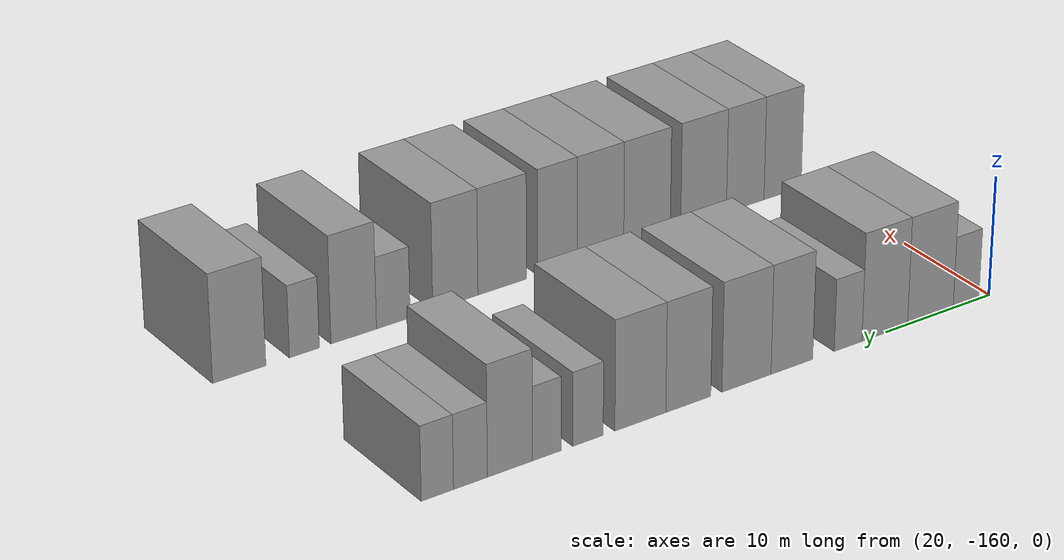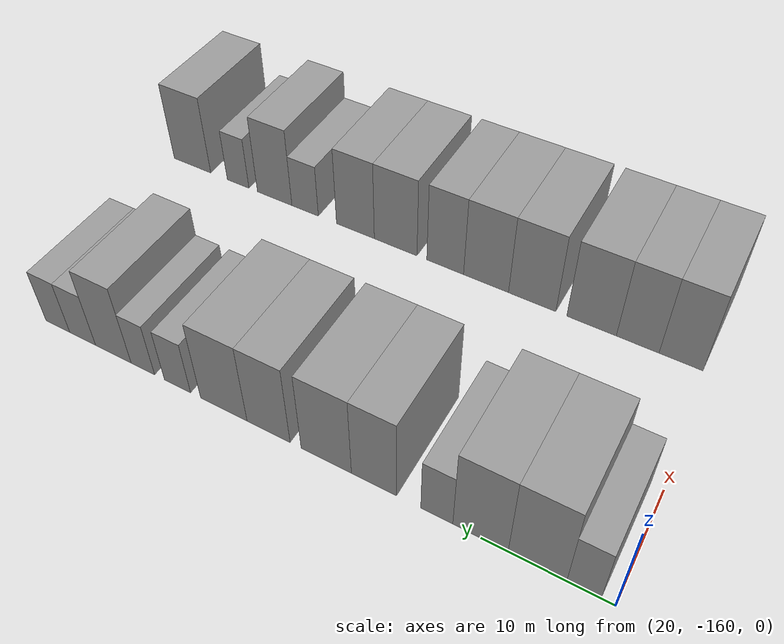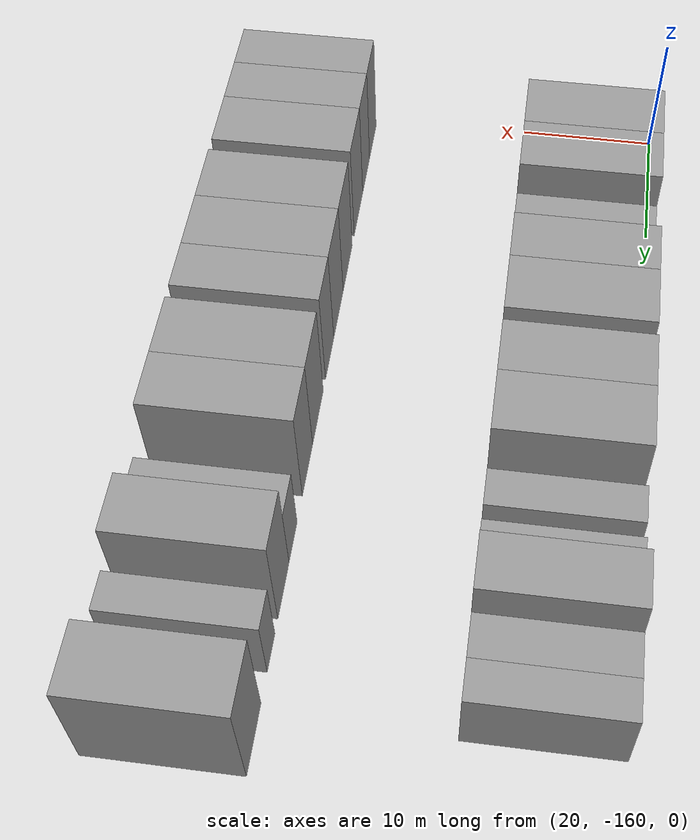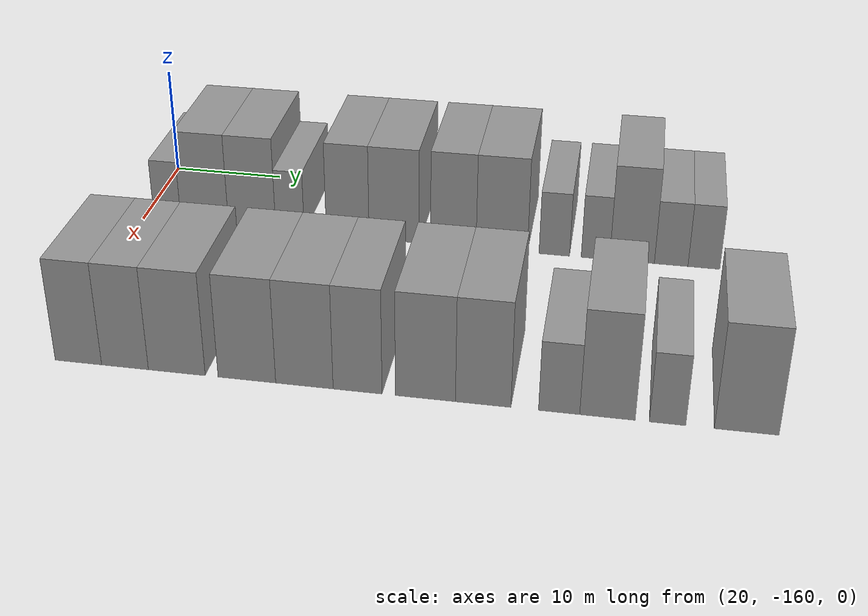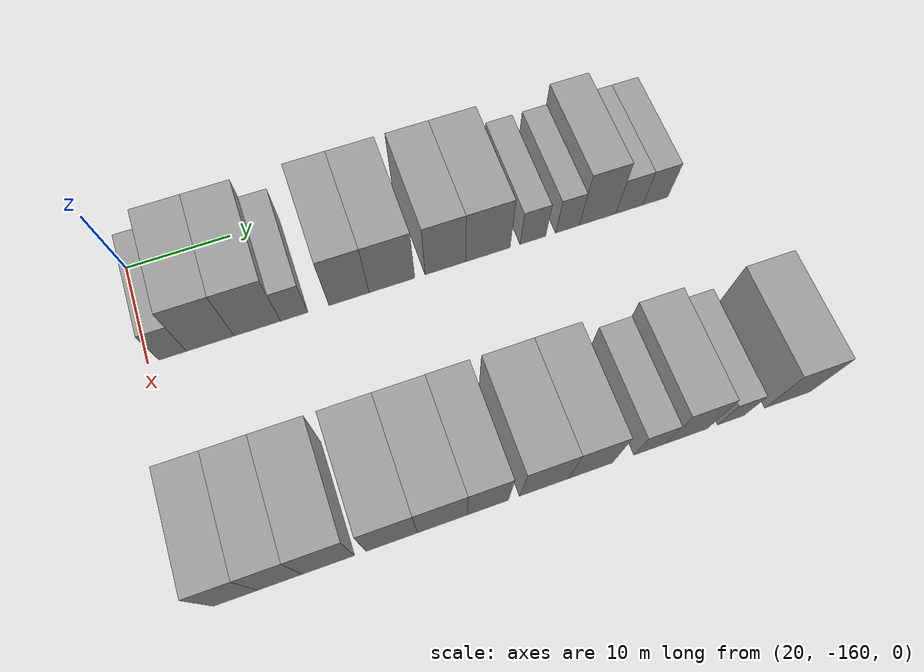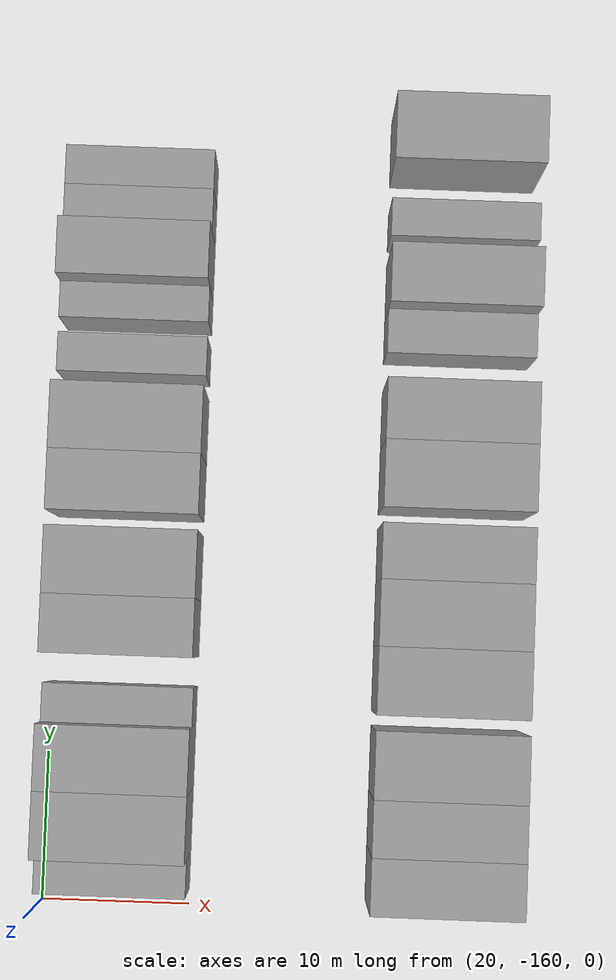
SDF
<sdf version="1.6">
 <world name="default">
  <model name="building_14">
   <static>1</static>
   <pose>25.0000 -157.7201 0 0.000000 0.000000 0.000000</pose>
   <link name="link">
    <pose>0 0 3.00 0 0 0</pose>
    <collision name="collision"><geometry><box><size>10.0000 2.4967 6.0000</size></box></geometry></collision>
    <visual name="visual">
     <cast_shadows>0</cast_shadows>
     <geometry><box><size>10.0000 2.4967 6.0000</size></box></geometry>
     <material>
      <script>
       <uri>model://grey_wall/materials/scripts</uri>
       <uri>model://grey_wall/materials/textures</uri>
       <name>vrc/grey_wall</name>
      </script>
     </material>
    </visual>
   </link>
  </model>
  <model name="building_15">
   <static>1</static>
   <pose>25.0000 -154.2740 0 0.000000 0.000000 0.000000</pose>
   <link name="link">
    <pose>0 0 4.50 0 0 0</pose>
    <collision name="collision"><geometry><box><size>10.0000 4.3956 9.0000</size></box></geometry></collision>
    <visual name="visual">
     <cast_shadows>0</cast_shadows>
     <geometry><box><size>10.0000 4.3956 9.0000</size></box></geometry>
     <material>
      <script>
       <uri>model://grey_wall/materials/scripts</uri>
       <uri>model://grey_wall/materials/textures</uri>
       <name>vrc/grey_wall</name>
      </script>
     </material>
    </visual>
   </link>
  </model>
  <model name="building_16">
   <static>1</static>
   <pose>25.0000 -149.9144 0 0.000000 0.000000 0.000000</pose>
   <link name="link">
    <pose>0 0 4.50 0 0 0</pose>
    <collision name="collision"><geometry><box><size>10.0000 4.3236 9.0000</size></box></geometry></collision>
    <visual name="visual">
     <cast_shadows>0</cast_shadows>
     <geometry><box><size>10.0000 4.3236 9.0000</size></box></geometry>
     <material>
      <script>
       <uri>model://grey_wall/materials/scripts</uri>
       <uri>model://grey_wall/materials/textures</uri>
       <name>vrc/grey_wall</name>
      </script>
     </material>
    </visual>
   </link>
  </model>
  <model name="building_17">
   <static>1</static>
   <pose>25.0000 -146.4588 0 0.000000 0.000000 0.000000</pose>
   <link name="link">
    <pose>0 0 3.00 0 0 0</pose>
    <collision name="collision"><geometry><box><size>10.0000 2.5877 6.0000</size></box></geometry></collision>
    <visual name="visual">
     <cast_shadows>0</cast_shadows>
     <geometry><box><size>10.0000 2.5877 6.0000</size></box></geometry>
     <material>
      <script>
       <uri>model://grey_wall/materials/scripts</uri>
       <uri>model://grey_wall/materials/textures</uri>
       <name>vrc/grey_wall</name>
      </script>
     </material>
    </visual>
   </link>
  </model>
  <model name="building_18">
   <static>1</static>
   <pose>25.0000 -141.2487 0 0.000000 0.000000 0.000000</pose>
   <link name="link">
    <pose>0 0 4.50 0 0 0</pose>
    <collision name="collision"><geometry><box><size>10.0000 3.8325 9.0000</size></box></geometry></collision>
    <visual name="visual">
     <cast_shadows>0</cast_shadows>
     <geometry><box><size>10.0000 3.8325 9.0000</size></box></geometry>
     <material>
      <script>
       <uri>model://grey_wall/materials/scripts</uri>
       <uri>model://grey_wall/materials/textures</uri>
       <name>vrc/grey_wall</name>
      </script>
     </material>
    </visual>
   </link>
  </model>
  <model name="building_19">
   <static>1</static>
   <pose>25.0000 -137.1106 0 0.000000 0.000000 0.000000</pose>
   <link name="link">
    <pose>0 0 4.50 0 0 0</pose>
    <collision name="collision"><geometry><box><size>10.0000 4.4438 9.0000</size></box></geometry></collision>
    <visual name="visual">
     <cast_shadows>0</cast_shadows>
     <geometry><box><size>10.0000 4.4438 9.0000</size></box></geometry>
     <material>
      <script>
       <uri>model://grey_wall/materials/scripts</uri>
       <uri>model://grey_wall/materials/textures</uri>
       <name>vrc/grey_wall</name>
      </script>
     </material>
    </visual>
   </link>
  </model>
  <model name="building_20">
   <static>1</static>
   <pose>25.0000 -131.8946 0 0.000000 0.000000 0.000000</pose>
   <link name="link">
    <pose>0 0 4.50 0 0 0</pose>
    <collision name="collision"><geometry><box><size>10.0000 3.9882 9.0000</size></box></geometry></collision>
    <visual name="visual">
     <cast_shadows>0</cast_shadows>
     <geometry><box><size>10.0000 3.9882 9.0000</size></box></geometry>
     <material>
      <script>
       <uri>model://grey_wall/materials/scripts</uri>
       <uri>model://grey_wall/materials/textures</uri>
       <name>vrc/grey_wall</name>
      </script>
     </material>
    </visual>
   </link>
  </model>
  <model name="building_21">
   <static>1</static>
   <pose>25.0000 -127.6713 0 0.000000 0.000000 0.000000</pose>
   <link name="link">
    <pose>0 0 4.50 0 0 0</pose>
    <collision name="collision"><geometry><box><size>10.0000 4.4585 9.0000</size></box></geometry></collision>
    <visual name="visual">
     <cast_shadows>0</cast_shadows>
     <geometry><box><size>10.0000 4.4585 9.0000</size></box></geometry>
     <material>
      <script>
       <uri>model://grey_wall/materials/scripts</uri>
       <uri>model://grey_wall/materials/textures</uri>
       <name>vrc/grey_wall</name>
      </script>
     </material>
    </visual>
   </link>
  </model>
  <model name="building_22">
   <static>1</static>
   <pose>25.0000 -123.1345 0 0.000000 0.000000 0.000000</pose>
   <link name="link">
    <pose>0 0 3.00 0 0 0</pose>
    <collision name="collision"><geometry><box><size>10.0000 2.6150 6.0000</size></box></geometry></collision>
    <visual name="visual">
     <cast_shadows>0</cast_shadows>
     <geometry><box><size>10.0000 2.6150 6.0000</size></box></geometry>
     <material>
      <script>
       <uri>model://grey_wall/materials/scripts</uri>
       <uri>model://grey_wall/materials/textures</uri>
       <name>vrc/grey_wall</name>
      </script>
     </material>
    </visual>
   </link>
  </model>
  <model name="building_23">
   <static>1</static>
   <pose>25.0000 -119.6156 0 0.000000 0.000000 0.000000</pose>
   <link name="link">
    <pose>0 0 3.00 0 0 0</pose>
    <collision name="collision"><geometry><box><size>10.0000 2.4228 6.0000</size></box></geometry></collision>
    <visual name="visual">
     <cast_shadows>0</cast_shadows>
     <geometry><box><size>10.0000 2.4228 6.0000</size></box></geometry>
     <material>
      <script>
       <uri>model://grey_wall/materials/scripts</uri>
       <uri>model://grey_wall/materials/textures</uri>
       <name>vrc/grey_wall</name>
      </script>
     </material>
    </visual>
   </link>
  </model>
  <model name="building_24">
   <static>1</static>
   <pose>25.0000 -116.5192 0 0.000000 0.000000 0.000000</pose>
   <link name="link">
    <pose>0 0 4.50 0 0 0</pose>
    <collision name="collision"><geometry><box><size>10.0000 3.7701 9.0000</size></box></geometry></collision>
    <visual name="visual">
     <cast_shadows>0</cast_shadows>
     <geometry><box><size>10.0000 3.7701 9.0000</size></box></geometry>
     <material>
      <script>
       <uri>model://grey_wall/materials/scripts</uri>
       <uri>model://grey_wall/materials/textures</uri>
       <name>vrc/grey_wall</name>
      </script>
     </material>
    </visual>
   </link>
  </model>
  <model name="building_25">
   <static>1</static>
   <pose>25.0000 -113.2266 0 0.000000 0.000000 0.000000</pose>
   <link name="link">
    <pose>0 0 3.00 0 0 0</pose>
    <collision name="collision"><geometry><box><size>10.0000 2.8150 6.0000</size></box></geometry></collision>
    <visual name="visual">
     <cast_shadows>0</cast_shadows>
     <geometry><box><size>10.0000 2.8150 6.0000</size></box></geometry>
     <material>
      <script>
       <uri>model://grey_wall/materials/scripts</uri>
       <uri>model://grey_wall/materials/textures</uri>
       <name>vrc/grey_wall</name>
      </script>
     </material>
    </visual>
   </link>
  </model>
  <model name="building_26">
   <static>1</static>
   <pose>25.0000 -110.4952 0 0.000000 0.000000 0.000000</pose>
   <link name="link">
    <pose>0 0 3.00 0 0 0</pose>
    <collision name="collision"><geometry><box><size>10.0000 2.6478 6.0000</size></box></geometry></collision>
    <visual name="visual">
     <cast_shadows>0</cast_shadows>
     <geometry><box><size>10.0000 2.6478 6.0000</size></box></geometry>
     <material>
      <script>
       <uri>model://grey_wall/materials/scripts</uri>
       <uri>model://grey_wall/materials/textures</uri>
       <name>vrc/grey_wall</name>
      </script>
     </material>
    </visual>
   </link>
  </model>
  <model name="building_108">
   <static>1</static>
   <pose>47.0000 -157.3790 0 0.000000 0.000000 0.000000</pose>
   <link name="link">
    <pose>0 0 4.50 0 0 0</pose>
    <collision name="collision"><geometry><box><size>10.0000 3.7006 9.0000</size></box></geometry></collision>
    <visual name="visual">
     <cast_shadows>0</cast_shadows>
     <geometry><box><size>10.0000 3.7006 9.0000</size></box></geometry>
     <material>
      <script>
       <uri>model://grey_wall/materials/scripts</uri>
       <uri>model://grey_wall/materials/textures</uri>
       <name>vrc/grey_wall</name>
      </script>
     </material>
    </visual>
   </link>
  </model>
  <model name="building_109">
   <static>1</static>
   <pose>47.0000 -153.6802 0 0.000000 0.000000 0.000000</pose>
   <link name="link">
    <pose>0 0 4.50 0 0 0</pose>
    <collision name="collision"><geometry><box><size>10.0000 3.6971 9.0000</size></box></geometry></collision>
    <visual name="visual">
     <cast_shadows>0</cast_shadows>
     <geometry><box><size>10.0000 3.6971 9.0000</size></box></geometry>
     <material>
      <script>
       <uri>model://grey_wall/materials/scripts</uri>
       <uri>model://grey_wall/materials/textures</uri>
       <name>vrc/grey_wall</name>
      </script>
     </material>
    </visual>
   </link>
  </model>
  <model name="building_110">
   <static>1</static>
   <pose>47.0000 -149.6123 0 0.000000 0.000000 0.000000</pose>
   <link name="link">
    <pose>0 0 4.50 0 0 0</pose>
    <collision name="collision"><geometry><box><size>10.0000 4.4387 9.0000</size></box></geometry></collision>
    <visual name="visual">
     <cast_shadows>0</cast_shadows>
     <geometry><box><size>10.0000 4.4387 9.0000</size></box></geometry>
     <material>
      <script>
       <uri>model://grey_wall/materials/scripts</uri>
       <uri>model://grey_wall/materials/textures</uri>
       <name>vrc/grey_wall</name>
      </script>
     </material>
    </visual>
   </link>
  </model>
  <model name="building_111">
   <static>1</static>
   <pose>47.0000 -144.1765 0 0.000000 0.000000 0.000000</pose>
   <link name="link">
    <pose>0 0 4.50 0 0 0</pose>
    <collision name="collision"><geometry><box><size>10.0000 4.4330 9.0000</size></box></geometry></collision>
    <visual name="visual">
     <cast_shadows>0</cast_shadows>
     <geometry><box><size>10.0000 4.4330 9.0000</size></box></geometry>
     <material>
      <script>
       <uri>model://grey_wall/materials/scripts</uri>
       <uri>model://grey_wall/materials/textures</uri>
       <name>vrc/grey_wall</name>
      </script>
     </material>
    </visual>
   </link>
  </model>
  <model name="building_112">
   <static>1</static>
   <pose>47.0000 -139.7793 0 0.000000 0.000000 0.000000</pose>
   <link name="link">
    <pose>0 0 4.50 0 0 0</pose>
    <collision name="collision"><geometry><box><size>10.0000 4.3614 9.0000</size></box></geometry></collision>
    <visual name="visual">
     <cast_shadows>0</cast_shadows>
     <geometry><box><size>10.0000 4.3614 9.0000</size></box></geometry>
     <material>
      <script>
       <uri>model://grey_wall/materials/scripts</uri>
       <uri>model://grey_wall/materials/textures</uri>
       <name>vrc/grey_wall</name>
      </script>
     </material>
    </visual>
   </link>
  </model>
  <model name="building_113">
   <static>1</static>
   <pose>47.0000 -135.7615 0 0.000000 0.000000 0.000000</pose>
   <link name="link">
    <pose>0 0 4.50 0 0 0</pose>
    <collision name="collision"><geometry><box><size>10.0000 3.6741 9.0000</size></box></geometry></collision>
    <visual name="visual">
     <cast_shadows>0</cast_shadows>
     <geometry><box><size>10.0000 3.6741 9.0000</size></box></geometry>
     <material>
      <script>
       <uri>model://grey_wall/materials/scripts</uri>
       <uri>model://grey_wall/materials/textures</uri>
       <name>vrc/grey_wall</name>
      </script>
     </material>
    </visual>
   </link>
  </model>
  <model name="building_114">
   <static>1</static>
   <pose>47.0000 -130.7059 0 0.000000 0.000000 0.000000</pose>
   <link name="link">
    <pose>0 0 4.50 0 0 0</pose>
    <collision name="collision"><geometry><box><size>10.0000 4.4370 9.0000</size></box></geometry></collision>
    <visual name="visual">
     <cast_shadows>0</cast_shadows>
     <geometry><box><size>10.0000 4.4370 9.0000</size></box></geometry>
     <material>
      <script>
       <uri>model://grey_wall/materials/scripts</uri>
       <uri>model://grey_wall/materials/textures</uri>
       <name>vrc/grey_wall</name>
      </script>
     </material>
    </visual>
   </link>
  </model>
  <model name="building_115">
   <static>1</static>
   <pose>47.0000 -126.4576 0 0.000000 0.000000 0.000000</pose>
   <link name="link">
    <pose>0 0 4.50 0 0 0</pose>
    <collision name="collision"><geometry><box><size>10.0000 4.0596 9.0000</size></box></geometry></collision>
    <visual name="visual">
     <cast_shadows>0</cast_shadows>
     <geometry><box><size>10.0000 4.0596 9.0000</size></box></geometry>
     <material>
      <script>
       <uri>model://grey_wall/materials/scripts</uri>
       <uri>model://grey_wall/materials/textures</uri>
       <name>vrc/grey_wall</name>
      </script>
     </material>
    </visual>
   </link>
  </model>
  <model name="building_116">
   <static>1</static>
   <pose>47.0000 -120.9474 0 0.000000 0.000000 0.000000</pose>
   <link name="link">
    <pose>0 0 3.00 0 0 0</pose>
    <collision name="collision"><geometry><box><size>10.0000 2.9608 6.0000</size></box></geometry></collision>
    <visual name="visual">
     <cast_shadows>0</cast_shadows>
     <geometry><box><size>10.0000 2.9608 6.0000</size></box></geometry>
     <material>
      <script>
       <uri>model://grey_wall/materials/scripts</uri>
       <uri>model://grey_wall/materials/textures</uri>
       <name>vrc/grey_wall</name>
      </script>
     </material>
    </visual>
   </link>
  </model>
  <model name="building_117">
   <static>1</static>
   <pose>47.0000 -117.4919 0 0.000000 0.000000 0.000000</pose>
   <link name="link">
    <pose>0 0 4.50 0 0 0</pose>
    <collision name="collision"><geometry><box><size>10.0000 3.9501 9.0000</size></box></geometry></collision>
    <visual name="visual">
     <cast_shadows>0</cast_shadows>
     <geometry><box><size>10.0000 3.9501 9.0000</size></box></geometry>
     <material>
      <script>
       <uri>model://grey_wall/materials/scripts</uri>
       <uri>model://grey_wall/materials/textures</uri>
       <name>vrc/grey_wall</name>
      </script>
     </material>
    </visual>
   </link>
  </model>
  <model name="building_118">
   <static>1</static>
   <pose>47.0000 -113.2371 0 0.000000 0.000000 0.000000</pose>
   <link name="link">
    <pose>0 0 3.00 0 0 0</pose>
    <collision name="collision"><geometry><box><size>10.0000 2.5594 6.0000</size></box></geometry></collision>
    <visual name="visual">
     <cast_shadows>0</cast_shadows>
     <geometry><box><size>10.0000 2.5594 6.0000</size></box></geometry>
     <material>
      <script>
       <uri>model://grey_wall/materials/scripts</uri>
       <uri>model://grey_wall/materials/textures</uri>
       <name>vrc/grey_wall</name>
      </script>
     </material>
    </visual>
   </link>
  </model>
  <model name="building_119">
   <static>1</static>
   <pose>47.0000 -107.7214 0 0.000000 0.000000 0.000000</pose>
   <link name="link">
    <pose>0 0 4.50 0 0 0</pose>
    <collision name="collision"><geometry><box><size>10.0000 4.4720 9.0000</size></box></geometry></collision>
    <visual name="visual">
     <cast_shadows>0</cast_shadows>
     <geometry><box><size>10.0000 4.4720 9.0000</size></box></geometry>
     <material>
      <script>
       <uri>model://grey_wall/materials/scripts</uri>
       <uri>model://grey_wall/materials/textures</uri>
       <name>vrc/grey_wall</name>
      </script>
     </material>
    </visual>
   </link>
  </model>
 </world>
</sdf>
